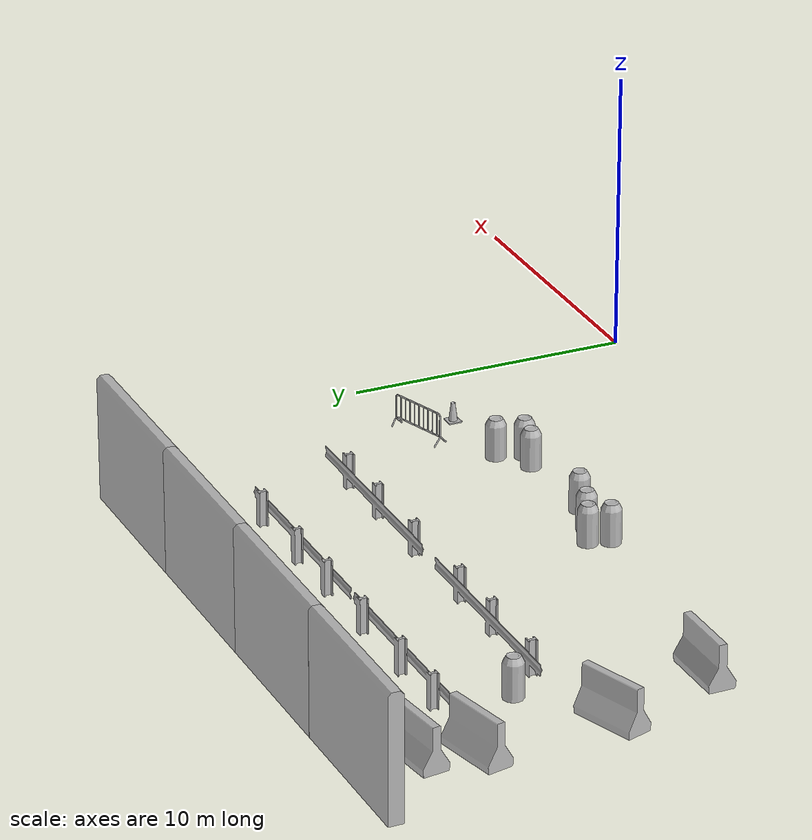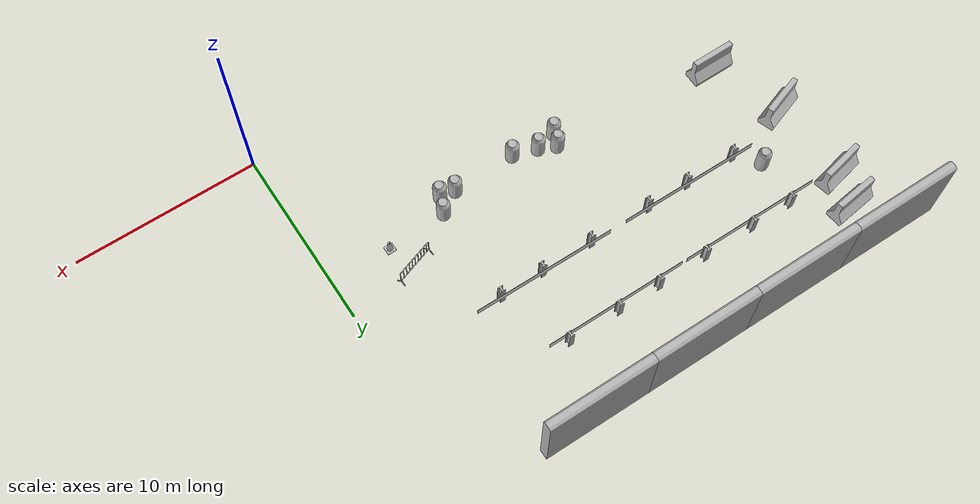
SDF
<sdf version="1.7">
 <world name="default">
  <model name="aws_robomaker_racetrack_CrashworthBucket_01_20">
   <frame name="aws_CrashworthBucket_01::__model__" attached_to="aws_CrashworthBucket_01::body">
    <pose relative_to="__model__">0 0 0 0 -0 0</pose>
   </frame>
   <link name="aws_CrashworthBucket_01::body">
    <pose relative_to="aws_CrashworthBucket_01::__model__">0 0 0 0 -0 0</pose>
    <inertial>
     <mass>5</mass>
     <inertia><ixx>1</ixx><ixy>0</ixy><ixz>0</ixz><iyy>1</iyy><iyz>0</iyz><izz>1</izz></inertia>
    </inertial>
    <visual name="visual">
     <geometry>
      <mesh>
       <uri>file://models/aws_robomaker_racetrack_CrashworthBucket_01/meshes/aws_CrashworthBucket_01_visual.DAE</uri>
      </mesh>
     </geometry>
     <material><shader type="pixel"><normal_map>__default__</normal_map></shader></material>
     <meta><layer>0</layer></meta>
    </visual>
    <collision name="collision_0">
     <geometry>
      <mesh>
       <uri>file://models/aws_robomaker_racetrack_CrashworthBucket_01/meshes/aws_CrashworthBucket_01_collision.DAE</uri>
       <scale>1 1 1</scale>
      </mesh>
     </geometry>
     <surface>
      <friction>
       <ode><mu>1</mu><mu2>1</mu2><fdir1>0 0 0</fdir1><slip1>0</slip1><slip2>0</slip2></ode>
       <torsional>
        <coefficient>1</coefficient>
        <patch_radius>0</patch_radius>
        <surface_radius>0</surface_radius>
        <use_patch_radius>1</use_patch_radius>
        <ode><slip>0</slip></ode>
       </torsional>
      </friction>
      <bounce><restitution_coefficient>0</restitution_coefficient><threshold>1e+06</threshold></bounce>
      <contact>
       <collide_without_contact>0</collide_without_contact>
       <collide_without_contact_bitmask>1</collide_without_contact_bitmask>
       <collide_bitmask>1</collide_bitmask>
       <ode>
        <soft_cfm>0</soft_cfm>
        <soft_erp>0.2</soft_erp>
        <kp>1e+13</kp>
        <kd>1</kd>
        <max_vel>0.01</max_vel>
        <min_depth>0</min_depth>
       </ode>
       <bullet>
        <split_impulse>1</split_impulse>
        <split_impulse_penetration_threshold>-0.01</split_impulse_penetration_threshold>
        <soft_cfm>0</soft_cfm>
        <soft_erp>0.2</soft_erp>
        <kp>1e+13</kp>
        <kd>1</kd>
       </bullet>
      </contact>
     </surface>
    </collision>
   </link>
   <static>1</static>
   <pose>-21.6163 14.2676 0 0 -0 0</pose>
  </model>
  <model name="aws_robomaker_racetrack_CrashworthBucket_01_55">
   <frame name="aws_CrashworthBucket_01::__model__" attached_to="aws_CrashworthBucket_01::body">
    <pose relative_to="__model__">0 0 0 0 -0 0</pose>
   </frame>
   <link name="aws_CrashworthBucket_01::body">
    <pose relative_to="aws_CrashworthBucket_01::__model__">0 0 0 0 -0 0</pose>
    <inertial>
     <mass>5</mass>
     <inertia><ixx>1</ixx><ixy>0</ixy><ixz>0</ixz><iyy>1</iyy><iyz>0</iyz><izz>1</izz></inertia>
    </inertial>
    <visual name="visual">
     <geometry>
      <mesh>
       <uri>file://models/aws_robomaker_racetrack_CrashworthBucket_01/meshes/aws_CrashworthBucket_01_visual.DAE</uri>
      </mesh>
     </geometry>
     <material><shader type="pixel"><normal_map>__default__</normal_map></shader></material>
     <meta><layer>0</layer></meta>
    </visual>
    <collision name="collision_0">
     <geometry>
      <mesh>
       <uri>file://models/aws_robomaker_racetrack_CrashworthBucket_01/meshes/aws_CrashworthBucket_01_collision.DAE</uri>
       <scale>1 1 1</scale>
      </mesh>
     </geometry>
     <surface>
      <friction>
       <ode><mu>1</mu><mu2>1</mu2><fdir1>0 0 0</fdir1><slip1>0</slip1><slip2>0</slip2></ode>
       <torsional>
        <coefficient>1</coefficient>
        <patch_radius>0</patch_radius>
        <surface_radius>0</surface_radius>
        <use_patch_radius>1</use_patch_radius>
        <ode><slip>0</slip></ode>
       </torsional>
      </friction>
      <bounce><restitution_coefficient>0</restitution_coefficient><threshold>1e+06</threshold></bounce>
      <contact>
       <collide_without_contact>0</collide_without_contact>
       <collide_without_contact_bitmask>1</collide_without_contact_bitmask>
       <collide_bitmask>1</collide_bitmask>
       <ode>
        <soft_cfm>0</soft_cfm>
        <soft_erp>0.2</soft_erp>
        <kp>1e+13</kp>
        <kd>1</kd>
        <max_vel>0.01</max_vel>
        <min_depth>0</min_depth>
       </ode>
       <bullet>
        <split_impulse>1</split_impulse>
        <split_impulse_penetration_threshold>-0.01</split_impulse_penetration_threshold>
        <soft_cfm>0</soft_cfm>
        <soft_erp>0.2</soft_erp>
        <kp>1e+13</kp>
        <kd>1</kd>
       </bullet>
      </contact>
     </surface>
    </collision>
   </link>
   <static>1</static>
   <pose>-11.2375 6.93335 0.054 0 -0 0</pose>
  </model>
  <model name="aws_robomaker_racetrack_CrashworthBucket_01_57">
   <frame name="aws_CrashworthBucket_01::__model__" attached_to="aws_CrashworthBucket_01::body">
    <pose relative_to="__model__">0 0 0 0 -0 0</pose>
   </frame>
   <link name="aws_CrashworthBucket_01::body">
    <pose relative_to="aws_CrashworthBucket_01::__model__">0 0 0 0 -0 0</pose>
    <inertial>
     <mass>5</mass>
     <inertia><ixx>1</ixx><ixy>0</ixy><ixz>0</ixz><iyy>1</iyy><iyz>0</iyz><izz>1</izz></inertia>
    </inertial>
    <visual name="visual">
     <geometry>
      <mesh>
       <uri>file://models/aws_robomaker_racetrack_CrashworthBucket_01/meshes/aws_CrashworthBucket_01_visual.DAE</uri>
      </mesh>
     </geometry>
     <material><shader type="pixel"><normal_map>__default__</normal_map></shader></material>
     <meta><layer>0</layer></meta>
    </visual>
    <collision name="collision_0">
     <geometry>
      <mesh>
       <uri>file://models/aws_robomaker_racetrack_CrashworthBucket_01/meshes/aws_CrashworthBucket_01_collision.DAE</uri>
       <scale>1 1 1</scale>
      </mesh>
     </geometry>
     <surface>
      <friction>
       <ode><mu>1</mu><mu2>1</mu2><fdir1>0 0 0</fdir1><slip1>0</slip1><slip2>0</slip2></ode>
       <torsional>
        <coefficient>1</coefficient>
        <patch_radius>0</patch_radius>
        <surface_radius>0</surface_radius>
        <use_patch_radius>1</use_patch_radius>
        <ode><slip>0</slip></ode>
       </torsional>
      </friction>
      <bounce><restitution_coefficient>0</restitution_coefficient><threshold>1e+06</threshold></bounce>
      <contact>
       <collide_without_contact>0</collide_without_contact>
       <collide_without_contact_bitmask>1</collide_without_contact_bitmask>
       <collide_bitmask>1</collide_bitmask>
       <ode>
        <soft_cfm>0</soft_cfm>
        <soft_erp>0.2</soft_erp>
        <kp>1e+13</kp>
        <kd>1</kd>
        <max_vel>0.01</max_vel>
        <min_depth>0</min_depth>
       </ode>
       <bullet>
        <split_impulse>1</split_impulse>
        <split_impulse_penetration_threshold>-0.01</split_impulse_penetration_threshold>
        <soft_cfm>0</soft_cfm>
        <soft_erp>0.2</soft_erp>
        <kp>1e+13</kp>
        <kd>1</kd>
       </bullet>
      </contact>
     </surface>
    </collision>
   </link>
   <static>1</static>
   <pose>-7.72969 7.02543 0.054 0 -0 0</pose>
  </model>
  <model name="aws_robomaker_racetrack_CrashworthBucket_01_58">
   <frame name="aws_CrashworthBucket_01::__model__" attached_to="aws_CrashworthBucket_01::body">
    <pose relative_to="__model__">0 0 0 0 -0 0</pose>
   </frame>
   <link name="aws_CrashworthBucket_01::body">
    <pose relative_to="aws_CrashworthBucket_01::__model__">0 0 0 0 -0 0</pose>
    <inertial>
     <mass>5</mass>
     <inertia><ixx>1</ixx><ixy>0</ixy><ixz>0</ixz><iyy>1</iyy><iyz>0</iyz><izz>1</izz></inertia>
    </inertial>
    <visual name="visual">
     <geometry>
      <mesh>
       <uri>file://models/aws_robomaker_racetrack_CrashworthBucket_01/meshes/aws_CrashworthBucket_01_visual.DAE</uri>
      </mesh>
     </geometry>
     <material><shader type="pixel"><normal_map>__default__</normal_map></shader></material>
     <meta><layer>0</layer></meta>
    </visual>
    <collision name="collision_0">
     <geometry>
      <mesh>
       <uri>file://models/aws_robomaker_racetrack_CrashworthBucket_01/meshes/aws_CrashworthBucket_01_collision.DAE</uri>
       <scale>1 1 1</scale>
      </mesh>
     </geometry>
     <surface>
      <friction>
       <ode><mu>1</mu><mu2>1</mu2><fdir1>0 0 0</fdir1><slip1>0</slip1><slip2>0</slip2></ode>
       <torsional>
        <coefficient>1</coefficient>
        <patch_radius>0</patch_radius>
        <surface_radius>0</surface_radius>
        <use_patch_radius>1</use_patch_radius>
        <ode><slip>0</slip></ode>
       </torsional>
      </friction>
      <bounce><restitution_coefficient>0</restitution_coefficient><threshold>1e+06</threshold></bounce>
      <contact>
       <collide_without_contact>0</collide_without_contact>
       <collide_without_contact_bitmask>1</collide_without_contact_bitmask>
       <collide_bitmask>1</collide_bitmask>
       <ode>
        <soft_cfm>0</soft_cfm>
        <soft_erp>0.2</soft_erp>
        <kp>1e+13</kp>
        <kd>1</kd>
        <max_vel>0.01</max_vel>
        <min_depth>0</min_depth>
       </ode>
       <bullet>
        <split_impulse>1</split_impulse>
        <split_impulse_penetration_threshold>-0.01</split_impulse_penetration_threshold>
        <soft_cfm>0</soft_cfm>
        <soft_erp>0.2</soft_erp>
        <kp>1e+13</kp>
        <kd>1</kd>
       </bullet>
      </contact>
     </surface>
    </collision>
   </link>
   <static>1</static>
   <pose>-6.91293 6.87432 0.054 0 -0 0</pose>
  </model>
  <model name="aws_robomaker_racetrack_CrashworthBucket_01_59">
   <frame name="aws_CrashworthBucket_01::__model__" attached_to="aws_CrashworthBucket_01::body">
    <pose relative_to="__model__">0 0 0 0 -0 0</pose>
   </frame>
   <link name="aws_CrashworthBucket_01::body">
    <pose relative_to="aws_CrashworthBucket_01::__model__">0 0 0 0 -0 0</pose>
    <inertial>
     <mass>5</mass>
     <inertia><ixx>1</ixx><ixy>0</ixy><ixz>0</ixz><iyy>1</iyy><iyz>0</iyz><izz>1</izz></inertia>
    </inertial>
    <visual name="visual">
     <geometry>
      <mesh>
       <uri>file://models/aws_robomaker_racetrack_CrashworthBucket_01/meshes/aws_CrashworthBucket_01_visual.DAE</uri>
      </mesh>
     </geometry>
     <material><shader type="pixel"><normal_map>__default__</normal_map></shader></material>
     <meta><layer>0</layer></meta>
    </visual>
    <collision name="collision_0">
     <geometry>
      <mesh>
       <uri>file://models/aws_robomaker_racetrack_CrashworthBucket_01/meshes/aws_CrashworthBucket_01_collision.DAE</uri>
       <scale>1 1 1</scale>
      </mesh>
     </geometry>
     <surface>
      <friction>
       <ode><mu>1</mu><mu2>1</mu2><fdir1>0 0 0</fdir1><slip1>0</slip1><slip2>0</slip2></ode>
       <torsional>
        <coefficient>1</coefficient>
        <patch_radius>0</patch_radius>
        <surface_radius>0</surface_radius>
        <use_patch_radius>1</use_patch_radius>
        <ode><slip>0</slip></ode>
       </torsional>
      </friction>
      <bounce><restitution_coefficient>0</restitution_coefficient><threshold>1e+06</threshold></bounce>
      <contact>
       <collide_without_contact>0</collide_without_contact>
       <collide_without_contact_bitmask>1</collide_without_contact_bitmask>
       <collide_bitmask>1</collide_bitmask>
       <ode>
        <soft_cfm>0</soft_cfm>
        <soft_erp>0.2</soft_erp>
        <kp>1e+13</kp>
        <kd>1</kd>
        <max_vel>0.01</max_vel>
        <min_depth>0</min_depth>
       </ode>
       <bullet>
        <split_impulse>1</split_impulse>
        <split_impulse_penetration_threshold>-0.01</split_impulse_penetration_threshold>
        <soft_cfm>0</soft_cfm>
        <soft_erp>0.2</soft_erp>
        <kp>1e+13</kp>
        <kd>1</kd>
       </bullet>
      </contact>
     </surface>
    </collision>
   </link>
   <static>1</static>
   <pose>-6.56208 7.77782 0.054 0 -0 0</pose>
  </model>
  <model name="aws_robomaker_racetrack_CrashworthBucket_01_66">
   <frame name="aws_CrashworthBucket_01::__model__" attached_to="aws_CrashworthBucket_01::body">
    <pose relative_to="__model__">0 0 0 0 -0 0</pose>
   </frame>
   <link name="aws_CrashworthBucket_01::body">
    <pose relative_to="aws_CrashworthBucket_01::__model__">0 0 0 0 -0 0</pose>
    <inertial>
     <mass>5</mass>
     <inertia><ixx>1</ixx><ixy>0</ixy><ixz>0</ixz><iyy>1</iyy><iyz>0</iyz><izz>1</izz></inertia>
    </inertial>
    <visual name="visual">
     <geometry>
      <mesh>
       <uri>file://models/aws_robomaker_racetrack_CrashworthBucket_01/meshes/aws_CrashworthBucket_01_visual.DAE</uri>
      </mesh>
     </geometry>
     <material><shader type="pixel"><normal_map>__default__</normal_map></shader></material>
     <meta><layer>0</layer></meta>
    </visual>
    <collision name="collision_0">
     <geometry>
      <mesh>
       <uri>file://models/aws_robomaker_racetrack_CrashworthBucket_01/meshes/aws_CrashworthBucket_01_collision.DAE</uri>
       <scale>1 1 1</scale>
      </mesh>
     </geometry>
     <surface>
      <friction>
       <ode><mu>1</mu><mu2>1</mu2><fdir1>0 0 0</fdir1><slip1>0</slip1><slip2>0</slip2></ode>
       <torsional>
        <coefficient>1</coefficient>
        <patch_radius>0</patch_radius>
        <surface_radius>0</surface_radius>
        <use_patch_radius>1</use_patch_radius>
        <ode><slip>0</slip></ode>
       </torsional>
      </friction>
      <bounce><restitution_coefficient>0</restitution_coefficient><threshold>1e+06</threshold></bounce>
      <contact>
       <collide_without_contact>0</collide_without_contact>
       <collide_without_contact_bitmask>1</collide_without_contact_bitmask>
       <collide_bitmask>1</collide_bitmask>
       <ode>
        <soft_cfm>0</soft_cfm>
        <soft_erp>0.2</soft_erp>
        <kp>1e+13</kp>
        <kd>1</kd>
        <max_vel>0.01</max_vel>
        <min_depth>0</min_depth>
       </ode>
       <bullet>
        <split_impulse>1</split_impulse>
        <split_impulse_penetration_threshold>-0.01</split_impulse_penetration_threshold>
        <soft_cfm>0</soft_cfm>
        <soft_erp>0.2</soft_erp>
        <kp>1e+13</kp>
        <kd>1</kd>
       </bullet>
      </contact>
     </surface>
    </collision>
   </link>
   <static>1</static>
   <pose>-13.7254 7.00826 0.054 0 -0 0</pose>
  </model>
  <model name="aws_robomaker_racetrack_CrashworthBucket_01_67">
   <frame name="aws_CrashworthBucket_01::__model__" attached_to="aws_CrashworthBucket_01::body">
    <pose relative_to="__model__">0 0 0 0 -0 0</pose>
   </frame>
   <link name="aws_CrashworthBucket_01::body">
    <pose relative_to="aws_CrashworthBucket_01::__model__">0 0 0 0 -0 0</pose>
    <inertial>
     <mass>5</mass>
     <inertia><ixx>1</ixx><ixy>0</ixy><ixz>0</ixz><iyy>1</iyy><iyz>0</iyz><izz>1</izz></inertia>
    </inertial>
    <visual name="visual">
     <geometry>
      <mesh>
       <uri>file://models/aws_robomaker_racetrack_CrashworthBucket_01/meshes/aws_CrashworthBucket_01_visual.DAE</uri>
      </mesh>
     </geometry>
     <material><shader type="pixel"><normal_map>__default__</normal_map></shader></material>
     <meta><layer>0</layer></meta>
    </visual>
    <collision name="collision_0">
     <geometry>
      <mesh>
       <uri>file://models/aws_robomaker_racetrack_CrashworthBucket_01/meshes/aws_CrashworthBucket_01_collision.DAE</uri>
       <scale>1 1 1</scale>
      </mesh>
     </geometry>
     <surface>
      <friction>
       <ode><mu>1</mu><mu2>1</mu2><fdir1>0 0 0</fdir1><slip1>0</slip1><slip2>0</slip2></ode>
       <torsional>
        <coefficient>1</coefficient>
        <patch_radius>0</patch_radius>
        <surface_radius>0</surface_radius>
        <use_patch_radius>1</use_patch_radius>
        <ode><slip>0</slip></ode>
       </torsional>
      </friction>
      <bounce><restitution_coefficient>0</restitution_coefficient><threshold>1e+06</threshold></bounce>
      <contact>
       <collide_without_contact>0</collide_without_contact>
       <collide_without_contact_bitmask>1</collide_without_contact_bitmask>
       <collide_bitmask>1</collide_bitmask>
       <ode>
        <soft_cfm>0</soft_cfm>
        <soft_erp>0.2</soft_erp>
        <kp>1e+13</kp>
        <kd>1</kd>
        <max_vel>0.01</max_vel>
        <min_depth>0</min_depth>
       </ode>
       <bullet>
        <split_impulse>1</split_impulse>
        <split_impulse_penetration_threshold>-0.01</split_impulse_penetration_threshold>
        <soft_cfm>0</soft_cfm>
        <soft_erp>0.2</soft_erp>
        <kp>1e+13</kp>
        <kd>1</kd>
       </bullet>
      </contact>
     </surface>
    </collision>
   </link>
   <static>1</static>
   <pose>-13.4797 7.73167 0.054 0 -0 0</pose>
  </model>
  <model name="aws_robomaker_racetrack_CrashworthBucket_01_68">
   <frame name="aws_CrashworthBucket_01::__model__" attached_to="aws_CrashworthBucket_01::body">
    <pose relative_to="__model__">0 0 0 0 -0 0</pose>
   </frame>
   <link name="aws_CrashworthBucket_01::body">
    <pose relative_to="aws_CrashworthBucket_01::__model__">0 0 0 0 -0 0</pose>
    <inertial>
     <mass>5</mass>
     <inertia><ixx>1</ixx><ixy>0</ixy><ixz>0</ixz><iyy>1</iyy><iyz>0</iyz><izz>1</izz></inertia>
    </inertial>
    <visual name="visual">
     <geometry>
      <mesh>
       <uri>file://models/aws_robomaker_racetrack_CrashworthBucket_01/meshes/aws_CrashworthBucket_01_visual.DAE</uri>
      </mesh>
     </geometry>
     <material><shader type="pixel"><normal_map>__default__</normal_map></shader></material>
     <meta><layer>0</layer></meta>
    </visual>
    <collision name="collision_0">
     <geometry>
      <mesh>
       <uri>file://models/aws_robomaker_racetrack_CrashworthBucket_01/meshes/aws_CrashworthBucket_01_collision.DAE</uri>
       <scale>1 1 1</scale>
      </mesh>
     </geometry>
     <surface>
      <friction>
       <ode><mu>1</mu><mu2>1</mu2><fdir1>0 0 0</fdir1><slip1>0</slip1><slip2>0</slip2></ode>
       <torsional>
        <coefficient>1</coefficient>
        <patch_radius>0</patch_radius>
        <surface_radius>0</surface_radius>
        <use_patch_radius>1</use_patch_radius>
        <ode><slip>0</slip></ode>
       </torsional>
      </friction>
      <bounce><restitution_coefficient>0</restitution_coefficient><threshold>1e+06</threshold></bounce>
      <contact>
       <collide_without_contact>0</collide_without_contact>
       <collide_without_contact_bitmask>1</collide_without_contact_bitmask>
       <collide_bitmask>1</collide_bitmask>
       <ode>
        <soft_cfm>0</soft_cfm>
        <soft_erp>0.2</soft_erp>
        <kp>1e+13</kp>
        <kd>1</kd>
        <max_vel>0.01</max_vel>
        <min_depth>0</min_depth>
       </ode>
       <bullet>
        <split_impulse>1</split_impulse>
        <split_impulse_penetration_threshold>-0.01</split_impulse_penetration_threshold>
        <soft_cfm>0</soft_cfm>
        <soft_erp>0.2</soft_erp>
        <kp>1e+13</kp>
        <kd>1</kd>
       </bullet>
      </contact>
     </surface>
    </collision>
   </link>
   <static>1</static>
   <pose>-12.5612 7.3288 0.054 0 -0 0</pose>
  </model>
  <model name="aws_robomaker_racetrack_Fence_01_02">
   <frame name="aws_Fence_01::__model__" attached_to="aws_Fence_01::body">
    <pose relative_to="__model__">0 0 0 0 -0 0</pose>
   </frame>
   <link name="aws_Fence_01::body">
    <pose relative_to="aws_Fence_01::__model__">0 0 0 0 -0 0</pose>
    <inertial>
     <mass>5</mass>
     <inertia><ixx>1</ixx><ixy>0</ixy><ixz>0</ixz><iyy>1</iyy><iyz>0</iyz><izz>1</izz></inertia>
    </inertial>
    <visual name="visual">
     <geometry>
      <mesh><uri>file://models/aws_robomaker_racetrack_Fence_01/meshes/aws_Fence_01_visual.DAE</uri></mesh>
     </geometry>
     <material><shader type="pixel"><normal_map>__default__</normal_map></shader></material>
     <meta><layer>0</layer></meta>
    </visual>
    <collision name="collision_0">
     <geometry>
      <mesh>
       <uri>file://models/aws_robomaker_racetrack_Fence_01/meshes/aws_Fence_01_collision.DAE</uri>
       <scale>1 1 1</scale>
      </mesh>
     </geometry>
     <surface>
      <friction>
       <ode><mu>1</mu><mu2>1</mu2><fdir1>0 0 0</fdir1><slip1>0</slip1><slip2>0</slip2></ode>
       <torsional>
        <coefficient>1</coefficient>
        <patch_radius>0</patch_radius>
        <surface_radius>0</surface_radius>
        <use_patch_radius>1</use_patch_radius>
        <ode><slip>0</slip></ode>
       </torsional>
      </friction>
      <bounce><restitution_coefficient>0</restitution_coefficient><threshold>1e+06</threshold></bounce>
      <contact>
       <collide_without_contact>0</collide_without_contact>
       <collide_without_contact_bitmask>1</collide_without_contact_bitmask>
       <collide_bitmask>1</collide_bitmask>
       <ode>
        <soft_cfm>0</soft_cfm>
        <soft_erp>0.2</soft_erp>
        <kp>1e+13</kp>
        <kd>1</kd>
        <max_vel>0.01</max_vel>
        <min_depth>0</min_depth>
       </ode>
       <bullet>
        <split_impulse>1</split_impulse>
        <split_impulse_penetration_threshold>-0.01</split_impulse_penetration_threshold>
        <soft_cfm>0</soft_cfm>
        <soft_erp>0.2</soft_erp>
        <kp>1e+13</kp>
        <kd>1</kd>
       </bullet>
      </contact>
     </surface>
    </collision>
   </link>
   <static>1</static>
   <pose>-8.89723 13.1587 0 0 0 -1.57272</pose>
  </model>
  <model name="aws_robomaker_racetrack_Fence_01_03">
   <frame name="aws_Fence_01::__model__" attached_to="aws_Fence_01::body">
    <pose relative_to="__model__">0 0 0 0 -0 0</pose>
   </frame>
   <link name="aws_Fence_01::body">
    <pose relative_to="aws_Fence_01::__model__">0 0 0 0 -0 0</pose>
    <inertial>
     <mass>5</mass>
     <inertia><ixx>1</ixx><ixy>0</ixy><ixz>0</ixz><iyy>1</iyy><iyz>0</iyz><izz>1</izz></inertia>
    </inertial>
    <visual name="visual">
     <geometry>
      <mesh><uri>file://models/aws_robomaker_racetrack_Fence_01/meshes/aws_Fence_01_visual.DAE</uri></mesh>
     </geometry>
     <material><shader type="pixel"><normal_map>__default__</normal_map></shader></material>
     <meta><layer>0</layer></meta>
    </visual>
    <collision name="collision_0">
     <geometry>
      <mesh>
       <uri>file://models/aws_robomaker_racetrack_Fence_01/meshes/aws_Fence_01_collision.DAE</uri>
       <scale>1 1 1</scale>
      </mesh>
     </geometry>
     <surface>
      <friction>
       <ode><mu>1</mu><mu2>1</mu2><fdir1>0 0 0</fdir1><slip1>0</slip1><slip2>0</slip2></ode>
       <torsional>
        <coefficient>1</coefficient>
        <patch_radius>0</patch_radius>
        <surface_radius>0</surface_radius>
        <use_patch_radius>1</use_patch_radius>
        <ode><slip>0</slip></ode>
       </torsional>
      </friction>
      <bounce><restitution_coefficient>0</restitution_coefficient><threshold>1e+06</threshold></bounce>
      <contact>
       <collide_without_contact>0</collide_without_contact>
       <collide_without_contact_bitmask>1</collide_without_contact_bitmask>
       <collide_bitmask>1</collide_bitmask>
       <ode>
        <soft_cfm>0</soft_cfm>
        <soft_erp>0.2</soft_erp>
        <kp>1e+13</kp>
        <kd>1</kd>
        <max_vel>0.01</max_vel>
        <min_depth>0</min_depth>
       </ode>
       <bullet>
        <split_impulse>1</split_impulse>
        <split_impulse_penetration_threshold>-0.01</split_impulse_penetration_threshold>
        <soft_cfm>0</soft_cfm>
        <soft_erp>0.2</soft_erp>
        <kp>1e+13</kp>
        <kd>1</kd>
       </bullet>
      </contact>
     </surface>
    </collision>
   </link>
   <static>1</static>
   <pose>-17.6812 13.1587 0 0 0 -1.57272</pose>
  </model>
  <model name="aws_robomaker_racetrack_Fence_01_12">
   <frame name="aws_Fence_01::__model__" attached_to="aws_Fence_01::body">
    <pose relative_to="__model__">0 0 0 0 -0 0</pose>
   </frame>
   <link name="aws_Fence_01::body">
    <pose relative_to="aws_Fence_01::__model__">0 0 0 0 -0 0</pose>
    <inertial>
     <mass>5</mass>
     <inertia><ixx>1</ixx><ixy>0</ixy><ixz>0</ixz><iyy>1</iyy><iyz>0</iyz><izz>1</izz></inertia>
    </inertial>
    <visual name="visual">
     <geometry>
      <mesh><uri>file://models/aws_robomaker_racetrack_Fence_01/meshes/aws_Fence_01_visual.DAE</uri></mesh>
     </geometry>
     <material><shader type="pixel"><normal_map>__default__</normal_map></shader></material>
     <meta><layer>0</layer></meta>
    </visual>
    <collision name="collision_0">
     <geometry>
      <mesh>
       <uri>file://models/aws_robomaker_racetrack_Fence_01/meshes/aws_Fence_01_collision.DAE</uri>
       <scale>1 1 1</scale>
      </mesh>
     </geometry>
     <surface>
      <friction>
       <ode><mu>1</mu><mu2>1</mu2><fdir1>0 0 0</fdir1><slip1>0</slip1><slip2>0</slip2></ode>
       <torsional>
        <coefficient>1</coefficient>
        <patch_radius>0</patch_radius>
        <surface_radius>0</surface_radius>
        <use_patch_radius>1</use_patch_radius>
        <ode><slip>0</slip></ode>
       </torsional>
      </friction>
      <bounce><restitution_coefficient>0</restitution_coefficient><threshold>1e+06</threshold></bounce>
      <contact>
       <collide_without_contact>0</collide_without_contact>
       <collide_without_contact_bitmask>1</collide_without_contact_bitmask>
       <collide_bitmask>1</collide_bitmask>
       <ode>
        <soft_cfm>0</soft_cfm>
        <soft_erp>0.2</soft_erp>
        <kp>1e+13</kp>
        <kd>1</kd>
        <max_vel>0.01</max_vel>
        <min_depth>0</min_depth>
       </ode>
       <bullet>
        <split_impulse>1</split_impulse>
        <split_impulse_penetration_threshold>-0.01</split_impulse_penetration_threshold>
        <soft_cfm>0</soft_cfm>
        <soft_erp>0.2</soft_erp>
        <kp>1e+13</kp>
        <kd>1</kd>
       </bullet>
      </contact>
     </surface>
    </collision>
   </link>
   <static>1</static>
   <pose>-18.8827 16.8189 0.054 0 -0 1.57158</pose>
  </model>
  <model name="aws_robomaker_racetrack_Fence_01_13">
   <frame name="aws_Fence_01::__model__" attached_to="aws_Fence_01::body">
    <pose relative_to="__model__">0 0 0 0 -0 0</pose>
   </frame>
   <link name="aws_Fence_01::body">
    <pose relative_to="aws_Fence_01::__model__">0 0 0 0 -0 0</pose>
    <inertial>
     <mass>5</mass>
     <inertia><ixx>1</ixx><ixy>0</ixy><ixz>0</ixz><iyy>1</iyy><iyz>0</iyz><izz>1</izz></inertia>
    </inertial>
    <visual name="visual">
     <geometry>
      <mesh><uri>file://models/aws_robomaker_racetrack_Fence_01/meshes/aws_Fence_01_visual.DAE</uri></mesh>
     </geometry>
     <material><shader type="pixel"><normal_map>__default__</normal_map></shader></material>
     <meta><layer>0</layer></meta>
    </visual>
    <collision name="collision_0">
     <geometry>
      <mesh>
       <uri>file://models/aws_robomaker_racetrack_Fence_01/meshes/aws_Fence_01_collision.DAE</uri>
       <scale>1 1 1</scale>
      </mesh>
     </geometry>
     <surface>
      <friction>
       <ode><mu>1</mu><mu2>1</mu2><fdir1>0 0 0</fdir1><slip1>0</slip1><slip2>0</slip2></ode>
       <torsional>
        <coefficient>1</coefficient>
        <patch_radius>0</patch_radius>
        <surface_radius>0</surface_radius>
        <use_patch_radius>1</use_patch_radius>
        <ode><slip>0</slip></ode>
       </torsional>
      </friction>
      <bounce><restitution_coefficient>0</restitution_coefficient><threshold>1e+06</threshold></bounce>
      <contact>
       <collide_without_contact>0</collide_without_contact>
       <collide_without_contact_bitmask>1</collide_without_contact_bitmask>
       <collide_bitmask>1</collide_bitmask>
       <ode>
        <soft_cfm>0</soft_cfm>
        <soft_erp>0.2</soft_erp>
        <kp>1e+13</kp>
        <kd>1</kd>
        <max_vel>0.01</max_vel>
        <min_depth>0</min_depth>
       </ode>
       <bullet>
        <split_impulse>1</split_impulse>
        <split_impulse_penetration_threshold>-0.01</split_impulse_penetration_threshold>
        <soft_cfm>0</soft_cfm>
        <soft_erp>0.2</soft_erp>
        <kp>1e+13</kp>
        <kd>1</kd>
       </bullet>
      </contact>
     </surface>
    </collision>
   </link>
   <static>1</static>
   <pose>-10.7761 16.8189 0.054 0 -0 1.57158</pose>
  </model>
  <model name="aws_robomaker_racetrack_Fence_02_09">
   <frame name="aws_Fence_02::__model__" attached_to="aws_Fence_02::body">
    <pose relative_to="__model__">0 0 0 0 -0 0</pose>
   </frame>
   <link name="aws_Fence_02::body">
    <pose relative_to="aws_Fence_02::__model__">0 0 0 0 -0 0</pose>
    <inertial>
     <mass>5</mass>
     <inertia><ixx>9.6</ixx><ixy>0</ixy><ixz>0</ixz><iyy>8.2</iyy><iyz>0</iyz><izz>2.1</izz></inertia>
    </inertial>
    <visual name="visual">
     <geometry>
      <mesh><uri>file://models/aws_robomaker_racetrack_Fence_02/meshes/aws_Fence_02_visual.DAE</uri></mesh>
     </geometry>
     <material><shader type="pixel"><normal_map>__default__</normal_map></shader></material>
     <meta><layer>0</layer></meta>
    </visual>
    <collision name="collision_0">
     <geometry>
      <mesh>
       <uri>file://models/aws_robomaker_racetrack_Fence_02/meshes/aws_Fence_02_collision.DAE</uri>
       <scale>1 1 1</scale>
      </mesh>
     </geometry>
     <surface>
      <friction>
       <ode><mu>1</mu><mu2>1</mu2><fdir1>0 0 0</fdir1><slip1>0</slip1><slip2>0</slip2></ode>
       <torsional>
        <coefficient>1</coefficient>
        <patch_radius>0</patch_radius>
        <surface_radius>0</surface_radius>
        <use_patch_radius>1</use_patch_radius>
        <ode><slip>0</slip></ode>
       </torsional>
      </friction>
      <bounce><restitution_coefficient>0</restitution_coefficient><threshold>1e+06</threshold></bounce>
      <contact>
       <collide_without_contact>0</collide_without_contact>
       <collide_without_contact_bitmask>1</collide_without_contact_bitmask>
       <collide_bitmask>1</collide_bitmask>
      </contact>
     </surface>
    </collision>
   </link>
   <static>1</static>
   <pose>-3.85384 9.39461 0 0 -0 1.90339</pose>
  </model>
  <model name="aws_robomaker_racetrack_StonePier_01_02">
   <frame name="aws_StonePier_01::__model__" attached_to="aws_StonePier_01::body">
    <pose relative_to="__model__">0 0 0 0 -0 0</pose>
   </frame>
   <link name="aws_StonePier_01::body">
    <pose relative_to="aws_StonePier_01::__model__">0 0 0 0 -0 0</pose>
    <inertial>
     <mass>10</mass>
     <inertia><ixx>0</ixx><ixy>0</ixy><ixz>0</ixz><iyy>0</iyy><iyz>0</iyz><izz>0</izz></inertia>
    </inertial>
    <visual name="visual">
     <geometry>
      <mesh><uri>file://models/aws_robomaker_racetrack_StonePier_01/meshes/aws_StonePier_01_visual.DAE</uri></mesh>
     </geometry>
     <material><shader type="pixel"><normal_map>__default__</normal_map></shader></material>
     <meta><layer>0</layer></meta>
    </visual>
    <collision name="collision_0">
     <geometry>
      <mesh>
       <uri>file://models/aws_robomaker_racetrack_StonePier_01/meshes/aws_StonePier_01_collision.DAE</uri>
       <scale>1 1 1</scale>
      </mesh>
     </geometry>
     <surface>
      <friction>
       <ode><mu>1</mu><mu2>1</mu2><fdir1>0 0 0</fdir1><slip1>0</slip1><slip2>0</slip2></ode>
       <torsional>
        <coefficient>1</coefficient>
        <patch_radius>0</patch_radius>
        <surface_radius>0</surface_radius>
        <use_patch_radius>1</use_patch_radius>
        <ode><slip>0</slip></ode>
       </torsional>
      </friction>
      <bounce><restitution_coefficient>0</restitution_coefficient><threshold>1e+06</threshold></bounce>
      <contact>
       <collide_without_contact>0</collide_without_contact>
       <collide_without_contact_bitmask>1</collide_without_contact_bitmask>
       <collide_bitmask>1</collide_bitmask>
       <ode>
        <soft_cfm>0</soft_cfm>
        <soft_erp>0.2</soft_erp>
        <kp>1e+13</kp>
        <kd>1</kd>
        <max_vel>0.01</max_vel>
        <min_depth>0</min_depth>
       </ode>
       <bullet>
        <split_impulse>1</split_impulse>
        <split_impulse_penetration_threshold>-0.01</split_impulse_penetration_threshold>
        <soft_cfm>0</soft_cfm>
        <soft_erp>0.2</soft_erp>
        <kp>1e+13</kp>
        <kd>1</kd>
       </bullet>
      </contact>
     </surface>
    </collision>
   </link>
   <static>1</static>
   <pose>-22.8128 8.293 0.054 0 -0 0.009742</pose>
  </model>
  <model name="aws_robomaker_racetrack_StonePier_01_03">
   <frame name="aws_StonePier_01::__model__" attached_to="aws_StonePier_01::body">
    <pose relative_to="__model__">0 0 0 0 -0 0</pose>
   </frame>
   <link name="aws_StonePier_01::body">
    <pose relative_to="aws_StonePier_01::__model__">0 0 0 0 -0 0</pose>
    <inertial>
     <mass>10</mass>
     <inertia><ixx>0</ixx><ixy>0</ixy><ixz>0</ixz><iyy>0</iyy><iyz>0</iyz><izz>0</izz></inertia>
    </inertial>
    <visual name="visual">
     <geometry>
      <mesh><uri>file://models/aws_robomaker_racetrack_StonePier_01/meshes/aws_StonePier_01_visual.DAE</uri></mesh>
     </geometry>
     <material><shader type="pixel"><normal_map>__default__</normal_map></shader></material>
     <meta><layer>0</layer></meta>
    </visual>
    <collision name="collision_0">
     <geometry>
      <mesh>
       <uri>file://models/aws_robomaker_racetrack_StonePier_01/meshes/aws_StonePier_01_collision.DAE</uri>
       <scale>1 1 1</scale>
      </mesh>
     </geometry>
     <surface>
      <friction>
       <ode><mu>1</mu><mu2>1</mu2><fdir1>0 0 0</fdir1><slip1>0</slip1><slip2>0</slip2></ode>
       <torsional>
        <coefficient>1</coefficient>
        <patch_radius>0</patch_radius>
        <surface_radius>0</surface_radius>
        <use_patch_radius>1</use_patch_radius>
        <ode><slip>0</slip></ode>
       </torsional>
      </friction>
      <bounce><restitution_coefficient>0</restitution_coefficient><threshold>1e+06</threshold></bounce>
      <contact>
       <collide_without_contact>0</collide_without_contact>
       <collide_without_contact_bitmask>1</collide_without_contact_bitmask>
       <collide_bitmask>1</collide_bitmask>
       <ode>
        <soft_cfm>0</soft_cfm>
        <soft_erp>0.2</soft_erp>
        <kp>1e+13</kp>
        <kd>1</kd>
        <max_vel>0.01</max_vel>
        <min_depth>0</min_depth>
       </ode>
       <bullet>
        <split_impulse>1</split_impulse>
        <split_impulse_penetration_threshold>-0.01</split_impulse_penetration_threshold>
        <soft_cfm>0</soft_cfm>
        <soft_erp>0.2</soft_erp>
        <kp>1e+13</kp>
        <kd>1</kd>
       </bullet>
      </contact>
     </surface>
    </collision>
   </link>
   <static>1</static>
   <pose>-24.2891 12.2118 0.054 0 -0 0.334226</pose>
  </model>
  <model name="aws_robomaker_racetrack_StonePier_01_35">
   <frame name="aws_StonePier_01::__model__" attached_to="aws_StonePier_01::body">
    <pose relative_to="__model__">0 0 0 0 -0 0</pose>
   </frame>
   <link name="aws_StonePier_01::body">
    <pose relative_to="aws_StonePier_01::__model__">0 0 0 0 -0 0</pose>
    <inertial>
     <mass>10</mass>
     <inertia><ixx>0</ixx><ixy>0</ixy><ixz>0</ixz><iyy>0</iyy><iyz>0</iyz><izz>0</izz></inertia>
    </inertial>
    <visual name="visual">
     <geometry>
      <mesh><uri>file://models/aws_robomaker_racetrack_StonePier_01/meshes/aws_StonePier_01_visual.DAE</uri></mesh>
     </geometry>
     <material><shader type="pixel"><normal_map>__default__</normal_map></shader></material>
     <meta><layer>0</layer></meta>
    </visual>
    <collision name="collision_0">
     <geometry>
      <mesh>
       <uri>file://models/aws_robomaker_racetrack_StonePier_01/meshes/aws_StonePier_01_collision.DAE</uri>
       <scale>1 1 1</scale>
      </mesh>
     </geometry>
     <surface>
      <friction>
       <ode><mu>1</mu><mu2>1</mu2><fdir1>0 0 0</fdir1><slip1>0</slip1><slip2>0</slip2></ode>
       <torsional>
        <coefficient>1</coefficient>
        <patch_radius>0</patch_radius>
        <surface_radius>0</surface_radius>
        <use_patch_radius>1</use_patch_radius>
        <ode><slip>0</slip></ode>
       </torsional>
      </friction>
      <bounce><restitution_coefficient>0</restitution_coefficient><threshold>1e+06</threshold></bounce>
      <contact>
       <collide_without_contact>0</collide_without_contact>
       <collide_without_contact_bitmask>1</collide_without_contact_bitmask>
       <collide_bitmask>1</collide_bitmask>
       <ode>
        <soft_cfm>0</soft_cfm>
        <soft_erp>0.2</soft_erp>
        <kp>1e+13</kp>
        <kd>1</kd>
        <max_vel>0.01</max_vel>
        <min_depth>0</min_depth>
       </ode>
       <bullet>
        <split_impulse>1</split_impulse>
        <split_impulse_penetration_threshold>-0.01</split_impulse_penetration_threshold>
        <soft_cfm>0</soft_cfm>
        <soft_erp>0.2</soft_erp>
        <kp>1e+13</kp>
        <kd>1</kd>
       </bullet>
      </contact>
     </surface>
    </collision>
   </link>
   <static>1</static>
   <pose>-23.832 18.561 0.054 0 -0 0.133251</pose>
  </model>
  <model name="aws_robomaker_racetrack_StonePier_01_37">
   <frame name="aws_StonePier_01::__model__" attached_to="aws_StonePier_01::body">
    <pose relative_to="__model__">0 0 0 0 -0 0</pose>
   </frame>
   <link name="aws_StonePier_01::body">
    <pose relative_to="aws_StonePier_01::__model__">0 0 0 0 -0 0</pose>
    <inertial>
     <mass>10</mass>
     <inertia><ixx>0</ixx><ixy>0</ixy><ixz>0</ixz><iyy>0</iyy><iyz>0</iyz><izz>0</izz></inertia>
    </inertial>
    <visual name="visual">
     <geometry>
      <mesh><uri>file://models/aws_robomaker_racetrack_StonePier_01/meshes/aws_StonePier_01_visual.DAE</uri></mesh>
     </geometry>
     <material><shader type="pixel"><normal_map>__default__</normal_map></shader></material>
     <meta><layer>0</layer></meta>
    </visual>
    <collision name="collision_0">
     <geometry>
      <mesh>
       <uri>file://models/aws_robomaker_racetrack_StonePier_01/meshes/aws_StonePier_01_collision.DAE</uri>
       <scale>1 1 1</scale>
      </mesh>
     </geometry>
     <surface>
      <friction>
       <ode><mu>1</mu><mu2>1</mu2><fdir1>0 0 0</fdir1><slip1>0</slip1><slip2>0</slip2></ode>
       <torsional>
        <coefficient>1</coefficient>
        <patch_radius>0</patch_radius>
        <surface_radius>0</surface_radius>
        <use_patch_radius>1</use_patch_radius>
        <ode><slip>0</slip></ode>
       </torsional>
      </friction>
      <bounce><restitution_coefficient>0</restitution_coefficient><threshold>1e+06</threshold></bounce>
      <contact>
       <collide_without_contact>0</collide_without_contact>
       <collide_without_contact_bitmask>1</collide_without_contact_bitmask>
       <collide_bitmask>1</collide_bitmask>
       <ode>
        <soft_cfm>0</soft_cfm>
        <soft_erp>0.2</soft_erp>
        <kp>1e+13</kp>
        <kd>1</kd>
        <max_vel>0.01</max_vel>
        <min_depth>0</min_depth>
       </ode>
       <bullet>
        <split_impulse>1</split_impulse>
        <split_impulse_penetration_threshold>-0.01</split_impulse_penetration_threshold>
        <soft_cfm>0</soft_cfm>
        <soft_erp>0.2</soft_erp>
        <kp>1e+13</kp>
        <kd>1</kd>
       </bullet>
      </contact>
     </surface>
    </collision>
   </link>
   <static>1</static>
   <pose>-24.4271 16.8105 0.054 0 -0 0.217772</pose>
  </model>
  <model name="aws_robomaker_racetrack_TrafficCone_01_12">
   <frame name="aws_TrafficCone_01::__model__" attached_to="aws_TrafficCone_01::body">
    <pose relative_to="__model__">0 0 0 0 -0 0</pose>
   </frame>
   <link name="aws_TrafficCone_01::body">
    <pose relative_to="aws_TrafficCone_01::__model__">0 0 0 0 -0 0</pose>
    <inertial>
     <mass>0.5</mass>
     <inertia><ixx>1</ixx><ixy>0</ixy><ixz>0</ixz><iyy>1</iyy><iyz>0</iyz><izz>1</izz></inertia>
    </inertial>
    <visual name="visual">
     <geometry>
      <mesh>
       <uri>file://models/aws_robomaker_racetrack_TrafficCone_01/meshes/aws_TrafficCone_01_visual.DAE</uri>
      </mesh>
     </geometry>
     <material><shader type="pixel"><normal_map>__default__</normal_map></shader></material>
     <meta><layer>0</layer></meta>
    </visual>
    <collision name="collision_0">
     <geometry>
      <mesh>
       <uri>file://models/aws_robomaker_racetrack_TrafficCone_01/meshes/aws_TrafficCone_01_coliision.DAE</uri>
       <scale>1 1 1</scale>
      </mesh>
     </geometry>
     <surface>
      <friction>
       <ode><mu>1</mu><mu2>1</mu2><fdir1>0 0 0</fdir1><slip1>0</slip1><slip2>0</slip2></ode>
       <torsional>
        <coefficient>1</coefficient>
        <patch_radius>0</patch_radius>
        <surface_radius>0</surface_radius>
        <use_patch_radius>1</use_patch_radius>
        <ode><slip>0</slip></ode>
       </torsional>
      </friction>
      <bounce><restitution_coefficient>0</restitution_coefficient><threshold>1e+06</threshold></bounce>
      <contact>
       <collide_without_contact>0</collide_without_contact>
       <collide_without_contact_bitmask>1</collide_without_contact_bitmask>
       <collide_bitmask>1</collide_bitmask>
       <ode>
        <soft_cfm>0</soft_cfm>
        <soft_erp>0.2</soft_erp>
        <kp>1e+13</kp>
        <kd>1</kd>
        <max_vel>0.01</max_vel>
        <min_depth>0</min_depth>
       </ode>
       <bullet>
        <split_impulse>1</split_impulse>
        <split_impulse_penetration_threshold>-0.01</split_impulse_penetration_threshold>
        <soft_cfm>0</soft_cfm>
        <soft_erp>0.2</soft_erp>
        <kp>1e+13</kp>
        <kd>1</kd>
       </bullet>
      </contact>
     </surface>
    </collision>
   </link>
   <static>1</static>
   <pose>-3.3402 7.8678 0 0 -0 0</pose>
  </model>
  <model name="aws_robomaker_racetrack_Wall_01_03">
   <frame name="aws_Wall_01::__model__" attached_to="aws_Wall_01::body">
    <pose relative_to="__model__">0 0 0 0 -0 0</pose>
   </frame>
   <link name="aws_Wall_01::body">
    <pose relative_to="aws_Wall_01::__model__">0 0 0 0 -0 0</pose>
    <inertial>
     <mass>500</mass>
     <inertia><ixx>1</ixx><ixy>0</ixy><ixz>0</ixz><iyy>1</iyy><iyz>0</iyz><izz>1</izz></inertia>
    </inertial>
    <visual name="visual">
     <geometry>
      <mesh>
       <uri>file://models/aws_robomaker_racetrack_Wall_01/meshes/aws_Wall_01_visual.DAE</uri>
       <scale>2.59853 2.59853 2.59853</scale>
      </mesh>
     </geometry>
     <material><shader type="pixel"><normal_map>__default__</normal_map></shader></material>
     <meta><layer>1</layer></meta>
    </visual>
    <collision name="collision_0">
     <geometry>
      <mesh>
       <uri>file://models/aws_robomaker_racetrack_Wall_01/meshes/aws_Wall_01_collision.DAE</uri>
       <scale>2.59853 2.59853 2.59853</scale>
      </mesh>
     </geometry>
     <surface>
      <friction>
       <ode><mu>1</mu><mu2>1</mu2><fdir1>0 0 0</fdir1><slip1>0</slip1><slip2>0</slip2></ode>
       <torsional>
        <coefficient>1</coefficient>
        <patch_radius>0</patch_radius>
        <surface_radius>0</surface_radius>
        <use_patch_radius>1</use_patch_radius>
        <ode><slip>0</slip></ode>
       </torsional>
      </friction>
      <bounce><restitution_coefficient>0</restitution_coefficient><threshold>1e+06</threshold></bounce>
      <contact>
       <collide_without_contact>0</collide_without_contact>
       <collide_without_contact_bitmask>1</collide_without_contact_bitmask>
       <collide_bitmask>1</collide_bitmask>
       <ode>
        <soft_cfm>0</soft_cfm>
        <soft_erp>0.2</soft_erp>
        <kp>1e+13</kp>
        <kd>1</kd>
        <max_vel>0.01</max_vel>
        <min_depth>0</min_depth>
       </ode>
       <bullet>
        <split_impulse>1</split_impulse>
        <split_impulse_penetration_threshold>-0.01</split_impulse_penetration_threshold>
        <soft_cfm>0</soft_cfm>
        <soft_erp>0.2</soft_erp>
        <kp>1e+13</kp>
        <kd>1</kd>
       </bullet>
      </contact>
     </surface>
    </collision>
   </link>
   <static>1</static>
   <pose>-6.71068 20.6834 0 0 -0 0</pose>
  </model>
  <model name="aws_robomaker_racetrack_Wall_01_04">
   <frame name="aws_Wall_01::__model__" attached_to="aws_Wall_01::body">
    <pose relative_to="__model__">0 0 0 0 -0 0</pose>
   </frame>
   <link name="aws_Wall_01::body">
    <pose relative_to="aws_Wall_01::__model__">0 0 0 0 -0 0</pose>
    <inertial>
     <mass>500</mass>
     <inertia><ixx>1</ixx><ixy>0</ixy><ixz>0</ixz><iyy>1</iyy><iyz>0</iyz><izz>1</izz></inertia>
    </inertial>
    <visual name="visual">
     <geometry>
      <mesh>
       <uri>file://models/aws_robomaker_racetrack_Wall_01/meshes/aws_Wall_01_visual.DAE</uri>
       <scale>2.59853 2.59853 2.59853</scale>
      </mesh>
     </geometry>
     <material><shader type="pixel"><normal_map>__default__</normal_map></shader></material>
     <meta><layer>1</layer></meta>
    </visual>
    <collision name="collision_0">
     <geometry>
      <mesh>
       <uri>file://models/aws_robomaker_racetrack_Wall_01/meshes/aws_Wall_01_collision.DAE</uri>
       <scale>2.59853 2.59853 2.59853</scale>
      </mesh>
     </geometry>
     <surface>
      <friction>
       <ode><mu>1</mu><mu2>1</mu2><fdir1>0 0 0</fdir1><slip1>0</slip1><slip2>0</slip2></ode>
       <torsional>
        <coefficient>1</coefficient>
        <patch_radius>0</patch_radius>
        <surface_radius>0</surface_radius>
        <use_patch_radius>1</use_patch_radius>
        <ode><slip>0</slip></ode>
       </torsional>
      </friction>
      <bounce><restitution_coefficient>0</restitution_coefficient><threshold>1e+06</threshold></bounce>
      <contact>
       <collide_without_contact>0</collide_without_contact>
       <collide_without_contact_bitmask>1</collide_without_contact_bitmask>
       <collide_bitmask>1</collide_bitmask>
       <ode>
        <soft_cfm>0</soft_cfm>
        <soft_erp>0.2</soft_erp>
        <kp>1e+13</kp>
        <kd>1</kd>
        <max_vel>0.01</max_vel>
        <min_depth>0</min_depth>
       </ode>
       <bullet>
        <split_impulse>1</split_impulse>
        <split_impulse_penetration_threshold>-0.01</split_impulse_penetration_threshold>
        <soft_cfm>0</soft_cfm>
        <soft_erp>0.2</soft_erp>
        <kp>1e+13</kp>
        <kd>1</kd>
       </bullet>
      </contact>
     </surface>
    </collision>
   </link>
   <static>1</static>
   <pose>-12.5489 20.683 0 0 -0 0</pose>
  </model>
  <model name="aws_robomaker_racetrack_Wall_01_05">
   <frame name="aws_Wall_01::__model__" attached_to="aws_Wall_01::body">
    <pose relative_to="__model__">0 0 0 0 -0 0</pose>
   </frame>
   <link name="aws_Wall_01::body">
    <pose relative_to="aws_Wall_01::__model__">0 0 0 0 -0 0</pose>
    <inertial>
     <mass>500</mass>
     <inertia><ixx>1</ixx><ixy>0</ixy><ixz>0</ixz><iyy>1</iyy><iyz>0</iyz><izz>1</izz></inertia>
    </inertial>
    <visual name="visual">
     <geometry>
      <mesh>
       <uri>file://models/aws_robomaker_racetrack_Wall_01/meshes/aws_Wall_01_visual.DAE</uri>
       <scale>2.59853 2.59853 2.59853</scale>
      </mesh>
     </geometry>
     <material><shader type="pixel"><normal_map>__default__</normal_map></shader></material>
     <meta><layer>1</layer></meta>
    </visual>
    <collision name="collision_0">
     <geometry>
      <mesh>
       <uri>file://models/aws_robomaker_racetrack_Wall_01/meshes/aws_Wall_01_collision.DAE</uri>
       <scale>2.59853 2.59853 2.59853</scale>
      </mesh>
     </geometry>
     <surface>
      <friction>
       <ode><mu>1</mu><mu2>1</mu2><fdir1>0 0 0</fdir1><slip1>0</slip1><slip2>0</slip2></ode>
       <torsional>
        <coefficient>1</coefficient>
        <patch_radius>0</patch_radius>
        <surface_radius>0</surface_radius>
        <use_patch_radius>1</use_patch_radius>
        <ode><slip>0</slip></ode>
       </torsional>
      </friction>
      <bounce><restitution_coefficient>0</restitution_coefficient><threshold>1e+06</threshold></bounce>
      <contact>
       <collide_without_contact>0</collide_without_contact>
       <collide_without_contact_bitmask>1</collide_without_contact_bitmask>
       <collide_bitmask>1</collide_bitmask>
       <ode>
        <soft_cfm>0</soft_cfm>
        <soft_erp>0.2</soft_erp>
        <kp>1e+13</kp>
        <kd>1</kd>
        <max_vel>0.01</max_vel>
        <min_depth>0</min_depth>
       </ode>
       <bullet>
        <split_impulse>1</split_impulse>
        <split_impulse_penetration_threshold>-0.01</split_impulse_penetration_threshold>
        <soft_cfm>0</soft_cfm>
        <soft_erp>0.2</soft_erp>
        <kp>1e+13</kp>
        <kd>1</kd>
       </bullet>
      </contact>
     </surface>
    </collision>
   </link>
   <static>1</static>
   <pose>-18.3809 20.685 0 0 -0 0</pose>
  </model>
  <model name="aws_robomaker_racetrack_Wall_01_06">
   <frame name="aws_Wall_01::__model__" attached_to="aws_Wall_01::body">
    <pose relative_to="__model__">0 0 0 0 -0 0</pose>
   </frame>
   <link name="aws_Wall_01::body">
    <pose relative_to="aws_Wall_01::__model__">0 0 0 0 -0 0</pose>
    <inertial>
     <mass>500</mass>
     <inertia><ixx>1</ixx><ixy>0</ixy><ixz>0</ixz><iyy>1</iyy><iyz>0</iyz><izz>1</izz></inertia>
    </inertial>
    <visual name="visual">
     <geometry>
      <mesh>
       <uri>file://models/aws_robomaker_racetrack_Wall_01/meshes/aws_Wall_01_visual.DAE</uri>
       <scale>2.59853 2.59853 2.59853</scale>
      </mesh>
     </geometry>
     <material><shader type="pixel"><normal_map>__default__</normal_map></shader></material>
     <meta><layer>1</layer></meta>
    </visual>
    <collision name="collision_0">
     <geometry>
      <mesh>
       <uri>file://models/aws_robomaker_racetrack_Wall_01/meshes/aws_Wall_01_collision.DAE</uri>
       <scale>2.59853 2.59853 2.59853</scale>
      </mesh>
     </geometry>
     <surface>
      <friction>
       <ode><mu>1</mu><mu2>1</mu2><fdir1>0 0 0</fdir1><slip1>0</slip1><slip2>0</slip2></ode>
       <torsional>
        <coefficient>1</coefficient>
        <patch_radius>0</patch_radius>
        <surface_radius>0</surface_radius>
        <use_patch_radius>1</use_patch_radius>
        <ode><slip>0</slip></ode>
       </torsional>
      </friction>
      <bounce><restitution_coefficient>0</restitution_coefficient><threshold>1e+06</threshold></bounce>
      <contact>
       <collide_without_contact>0</collide_without_contact>
       <collide_without_contact_bitmask>1</collide_without_contact_bitmask>
       <collide_bitmask>1</collide_bitmask>
       <ode>
        <soft_cfm>0</soft_cfm>
        <soft_erp>0.2</soft_erp>
        <kp>1e+13</kp>
        <kd>1</kd>
        <max_vel>0.01</max_vel>
        <min_depth>0</min_depth>
       </ode>
       <bullet>
        <split_impulse>1</split_impulse>
        <split_impulse_penetration_threshold>-0.01</split_impulse_penetration_threshold>
        <soft_cfm>0</soft_cfm>
        <soft_erp>0.2</soft_erp>
        <kp>1e+13</kp>
        <kd>1</kd>
       </bullet>
      </contact>
     </surface>
    </collision>
   </link>
   <static>1</static>
   <pose>-24.2154 20.6835 0 0 -0 0</pose>
  </model>
  <model name="ground_plane">
   <pose>0 0 -1.67319e+06 0 -0 0</pose>
   <link name="link">
    <pose>0 0 -1 0 -0 0</pose>
    <inertial>
     <inertia><ixx>1</ixx><ixy>0</ixy><ixz>0</ixz><iyy>1</iyy><iyz>0</iyz><izz>1</izz></inertia>
     <mass>1</mass>
    </inertial>
    <velocity>0 0 0 0 -0 0</velocity>
    <acceleration>0 0 0 0 -0 0</acceleration>
   </link>
   <scale>1 1 1</scale>
  </model>
 </world>
</sdf>
